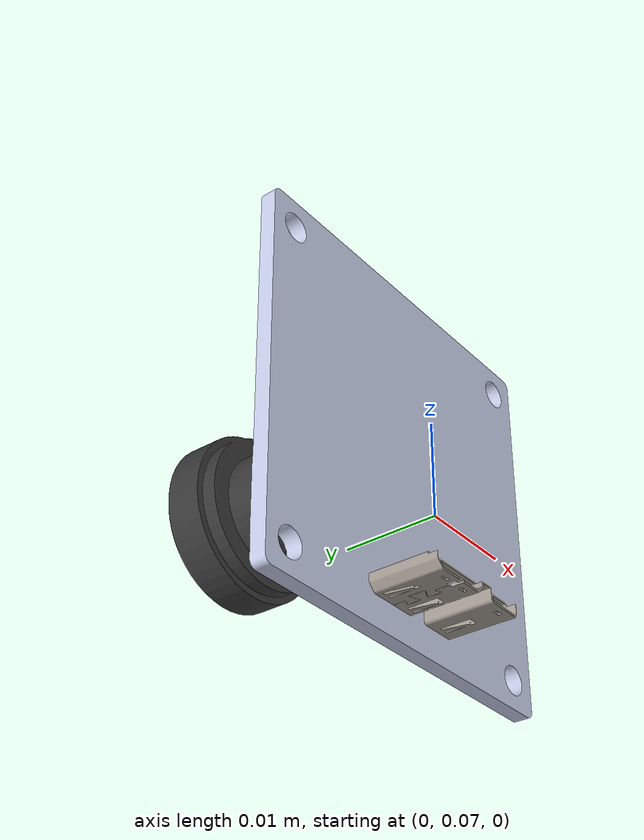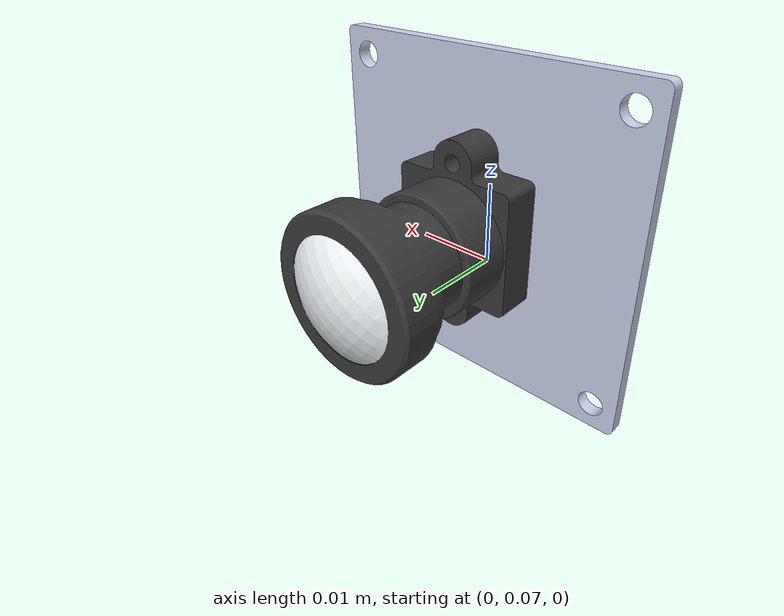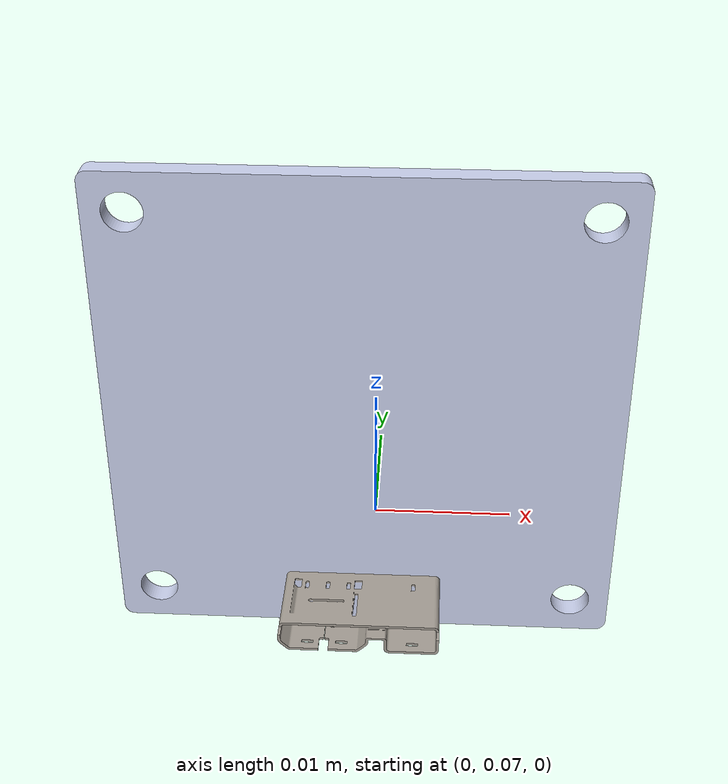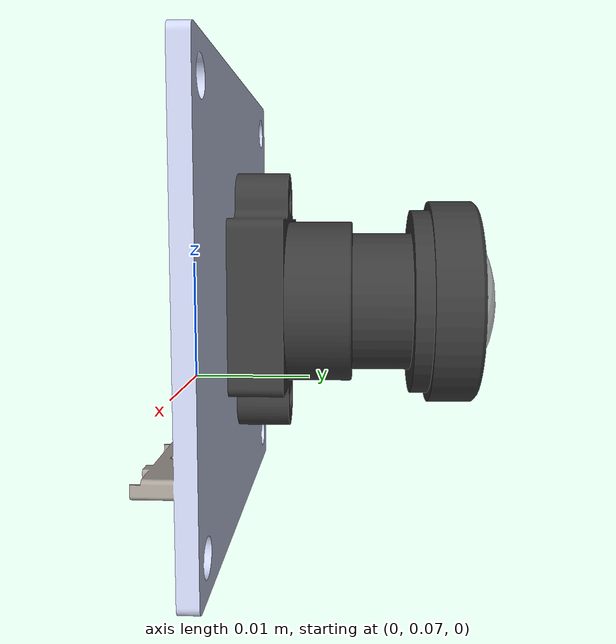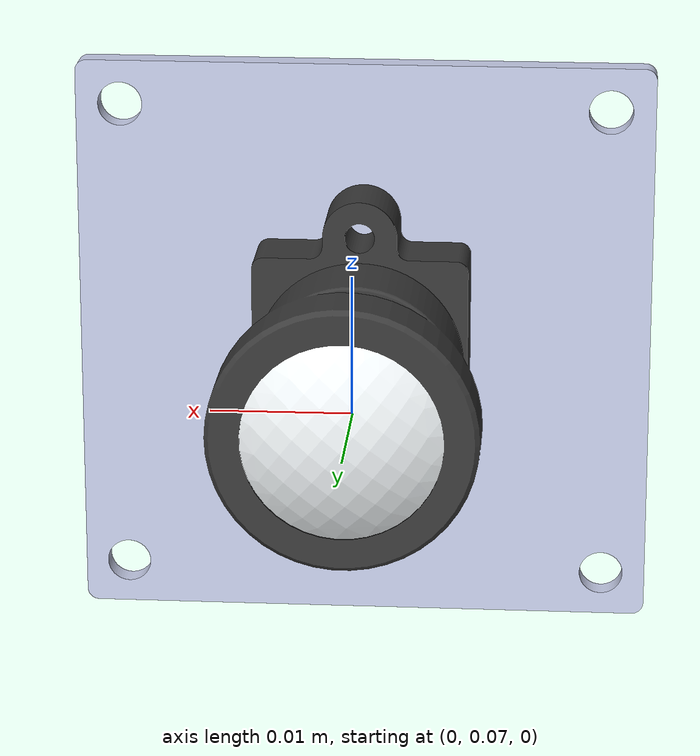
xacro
<?xml version="1.0" ?>

<robot xmlns:xacro="http://www.ros.org/wiki/xacro" name="dhex_camera">

  <!-- BGN - Include -->
  <xacro:include filename="$(find dhex_description)/urdf/sensors/generic_camera.xacro" />
  <!-- END - Include -->

<link name="base_link"/>

<generic_camera name="dhex_camera"
        origin_rpy_i="0 0 0" origin_xyz_i="-0.08296871 0.00060854 0.00007174"
        mass="0.07334031"
        ixx="1.67118895e-5" ixy="6.44941396e-7" ixz="4.94040904e-8"
        iyy="9.31556508e-6" iyz="-3.75739780e-8"
        izz="1.58005147e-5"
        meshfile="package://dhex_description/meshes/camera_new.stl"
        meshscale="1 1 1"
        parent="base_link"
        origin_rpy_j="0 0 1.5707" origin_xyz_j="0 0.08028694 0.0065"
        />

</robot>
<!-- origin_rpy_j="0 0 1.5707" origin_xyz_j="0 0.07028694 0.0065" -->

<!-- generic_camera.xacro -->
<robot xmlns:xacro="http://www.ros.org/wiki/xacro" name="generic_camera">

  <xacro:property name="M_PI" value="3.1415926535897931" />
  <xacro:property name="camera_size" value="0.05" />

  <xacro:macro name="generic_camera"
               params="parent:=base_link
                       name:=camera
                       topic:=/camera
                       hz:=30
                       fov:=${60.0*M_PI/180.0}
                       px_width:=640
                       px_heigth:=480
                       px_format:=R8G8B8
                       clip_near:=0.05
                       clip_far:=300
                       noise:=0.008
                       hackbaseline:=0.0
                       cxprime:=0
                       cx:=0
                       cy:=0
                       f:=0
                       k1:=0.0
                       k2:=0.0
                       k3:=0.0
                       t1:=0.0
                       t2:=0.0
                       origin_rpy_i
                       origin_xyz_i
                       meshfile
                       meshscale
                       mass
                       ixx ixy ixz
                       iyy iyz izz
                       origin_xyz_j
                       origin_rpy_j
                       ">

    <link name="${name}">
      <inertial>
        <mass value="${mass}" />
        <origin rpy="${origin_rpy_i}" xyz="${origin_xyz_i}" />
        <inertia ixx="${ixx}" ixy="${ixy}" ixz="${ixz}" iyy="${iyy}" iyz="${iyz}" izz="${izz}" />
      </inertial>
      <collision>
        <origin rpy="0 0 0" xyz="0 0 0" />
        <geometry>
          <mesh filename="${meshfile}" scale="${meshscale}"/>
        </geometry>
      </collision>
      <visual>
        <origin rpy="0 0 0" xyz="0 0 0" />
        <geometry>
          <mesh filename="${meshfile}" scale="${meshscale}"/>
        </geometry>
      </visual>
    </link>

    <link name="${name}_optical_frame"/>

    <joint name="${parent}_TO_${name}" type="fixed">
      <origin xyz="${origin_xyz_j}" rpy="${origin_rpy_j}"/>
      <parent link="${parent}"/>
      <child link="${name}"/>
      <axis xyz="0.0 0.0 0.0"/>
      <limit lower="0.0" upper="0.0" effort="0.0" velocity="0.0"/>
    </joint>

    <joint name="${name}__TO__${name}_optical_frame" type="fixed">
      <origin xyz="0.0 0.0 0.0" rpy="-1.5707 0.0 -1.5707"/>
      <parent link="${name}"/>
      <child link="${name}_optical_frame"/>
    </joint>

    <gazebo reference="${name}">
      <sensor type="camera" name="${name}_sensor">
        <update_rate>${hz}</update_rate>
        <camera name="${name}">
          <horizontal_fov>${fov}</horizontal_fov>
          <image>
            <width>${px_width}</width>
            <height>${px_heigth}</height>
            <format>${px_format}</format>
          </image>
          <clip>
            <near>${clip_near}</near>
            <far>${clip_far}</far>
          </clip>
          <noise>
            <type>gaussian</type>
            <mean>0.0</mean>
            <stddev>${noise}</stddev>
          </noise>
        </camera>
        <plugin name="camera_controller" filename="libgazebo_ros_camera.so">
          <alwaysOn>true</alwaysOn>
          <updateRate>${hz}</updateRate>
          <cameraName>${name}</cameraName>
          <imageTopicName>image_raw</imageTopicName>
          <cameraInfoTopicName>camera_info</cameraInfoTopicName>
          <frameName>${name}_optical_frame</frameName>
          <hackBaseline>${hackbaseline}</hackBaseline>
          <Cx>${cx}</Cx>
          <Cy>${cy}</Cy>
          <focalLength>${f}</focalLength>
          <distortionK1>${k1}</distortionK1>
          <distortionK2>${k2}</distortionK2>
          <distortionK3>${k3}</distortionK3>
          <distortionT1>${t1}</distortionT1>
          <distortionT2>${t2}</distortionT2>
        </plugin>
      </sensor>
    </gazebo>

  </xacro:macro>

</robot>
